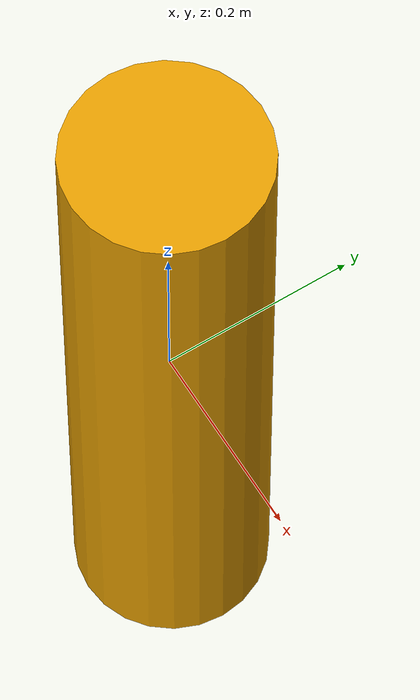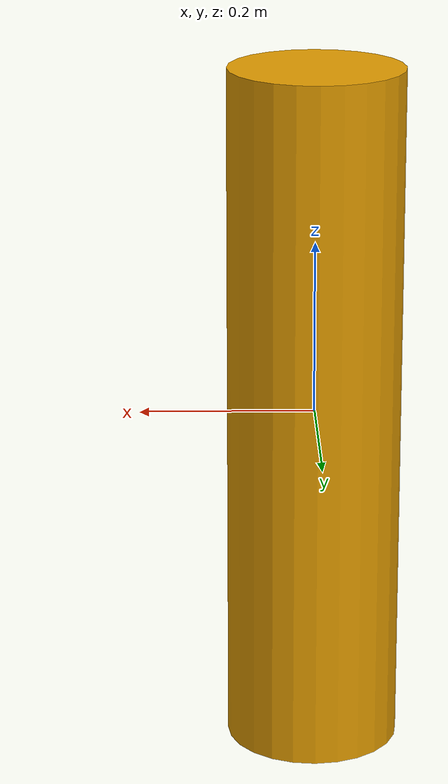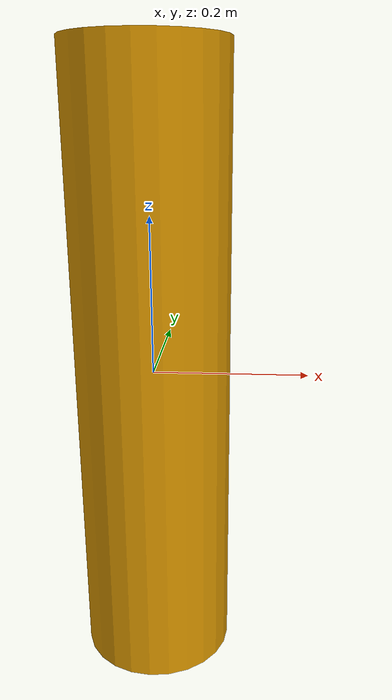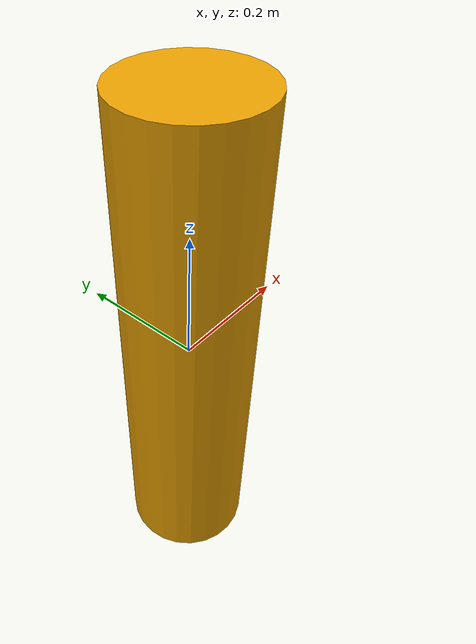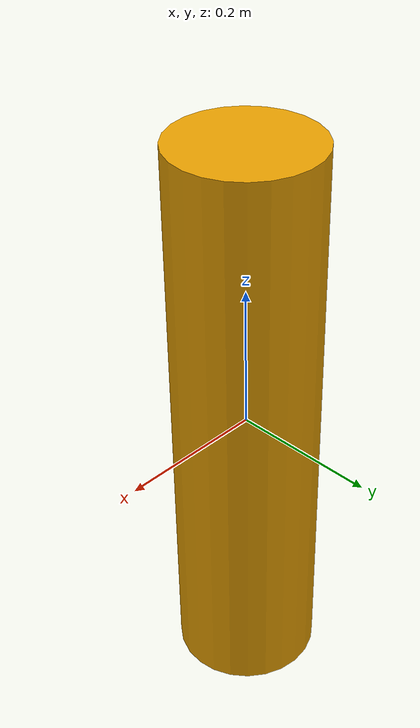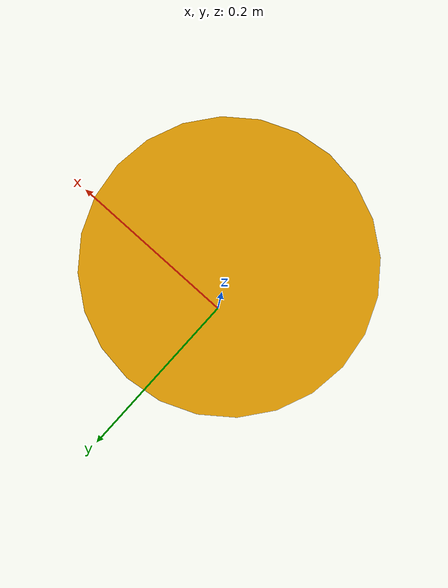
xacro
<?xml version="1.0"?>
<robot xmlns:sensor="http://playerstage.sourceforge.net/gazebo/xmlschema/#sensor"
       xmlns:controller="http://playerstage.sourceforge.net/gazebo/xmlschema/#controller"
       xmlns:interface="http://playerstage.sourceforge.net/gazebo/xmlschema/#interface"
       xmlns:xacro="http://playerstage.sourceforge.net/gazebo/xmlschema/#interface"
       name="powerline">
        <include filename="$(find cob_description)/urdf/common.xacro" />
  <link name="power_line_ground_truth">
    <visual>
            <origin xyz="0 0 0" rpy="0 0 0" />
      <geometry>
        <cylinder length="0.8" radius="0.1"/>
      </geometry>
    </visual>
    <collision>
        <origin xyz="0 0 0" rpy="0 0 0" />
      <geometry>
        <cylinder length="0.8" radius="0.1"/>
      </geometry>
    </collision>
    <inertial>
            <mass value="5" />
            <origin xyz="0 0 0" rpy="0 0 0" />
            <inertia ixx="0.004" ixy="0.001" ixz="0" iyy="0.006" iyz="0" izz="0.007" />
    </inertial>
  </link>
</robot>
